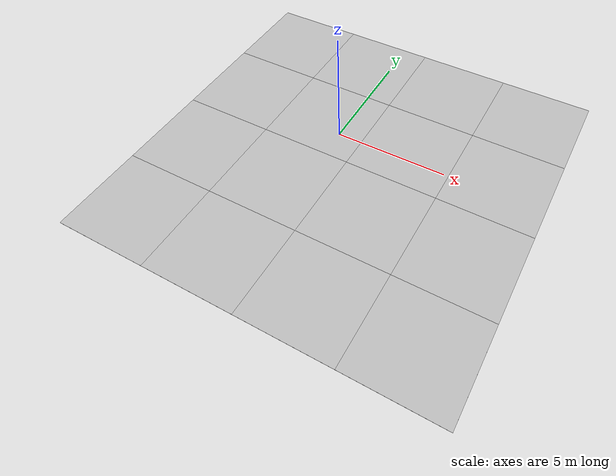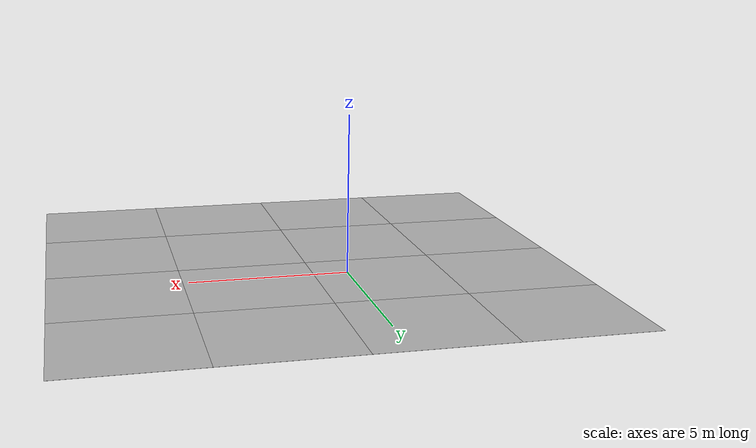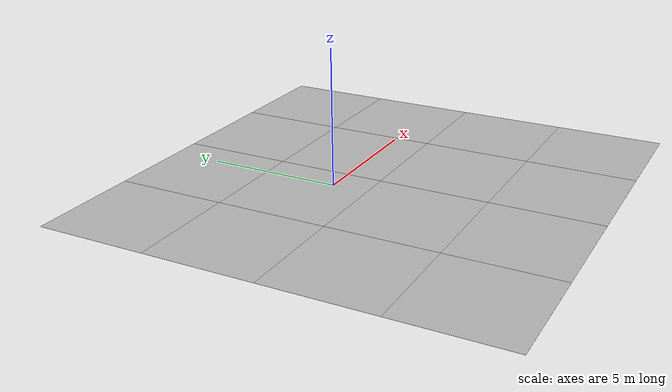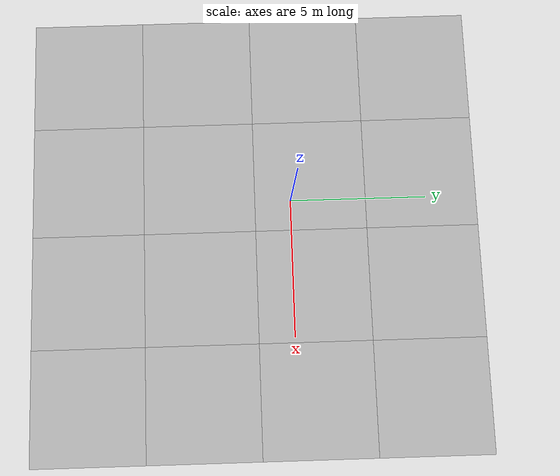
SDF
<sdf version='1.6'><world name='default'>
    <light name='sun_light' type='directional'>
      <pose frame=''>0 0 10 0 -0 0</pose>
      <diffuse>0.5 0.5 0.5 1</diffuse>
      <specular>0.1 0.1 0.1 1</specular>
      <direction>0.1 0.1 -0.9</direction>
      <attenuation>
        <range>20</range>
        <constant>0.5</constant>
        <linear>0.01</linear>
        <quadratic>0.001</quadratic>
      </attenuation>
      <cast_shadows>1</cast_shadows>
    </light>

    <model name='Tile/0-0'>
      <static>1</static>
      <link name='link'>
        <collision name='collision'>
          <geometry>
            <plane>
              <normal>0 0 1</normal>
              <size>4.096 4.096</size>
            </plane>
          </geometry>
          <surface>
            <friction>
              <ode>
                <mu>100</mu>
                <mu2>50</mu2>
              </ode>
              <torsional>
                <ode/>
              </torsional>
            </friction>
            <contact>
              <ode/>
            </contact>
            <bounce/>
          </surface>
          <max_contacts>10</max_contacts>
        </collision>
        <visual name='visual'>
          <cast_shadows>0</cast_shadows>
          <geometry>
            <plane>
              <normal>0 0 1</normal>
              <size>4.096 4.096</size>
            </plane>
          </geometry>
          <material>
            <script>
              <uri>file://materials/scripts</uri>
              <uri>file://materials/textures</uri>
              <name>Tile/5eab350b8220ac9944dbdfa4ac3288c7c17e24c3bf5df0dfcf6173d64dae00a1</name>
            </script>
          </material>
        </visual>
        <self_collide>0</self_collide>
        <enable_wind>0</enable_wind>
        <kinematic>0</kinematic>
      </link>
      <pose frame=''>-5.050071211363732 -7.4591558234549336 0 0 -0 0</pose>
    </model>

    <model name='Tile/0-1'>
      <static>1</static>
      <link name='link'>
        <collision name='collision'>
          <geometry>
            <plane>
              <normal>0 0 1</normal>
              <size>4.096 4.096</size>
            </plane>
          </geometry>
          <surface>
            <friction>
              <ode>
                <mu>100</mu>
                <mu2>50</mu2>
              </ode>
              <torsional>
                <ode/>
              </torsional>
            </friction>
            <contact>
              <ode/>
            </contact>
            <bounce/>
          </surface>
          <max_contacts>10</max_contacts>
        </collision>
        <visual name='visual'>
          <cast_shadows>0</cast_shadows>
          <geometry>
            <plane>
              <normal>0 0 1</normal>
              <size>4.096 4.096</size>
            </plane>
          </geometry>
          <material>
            <script>
              <uri>file://materials/scripts</uri>
              <uri>file://materials/textures</uri>
              <name>Tile/5a66a0bfa3d747c69b55a5d540424d5da67a893702cb40a3cc12525976280c4e</name>
            </script>
          </material>
        </visual>
        <self_collide>0</self_collide>
        <enable_wind>0</enable_wind>
        <kinematic>0</kinematic>
      </link>
      <pose frame=''>-5.050071211363732 -3.3631558234549335 0 0 -0 0</pose>
    </model>

    <model name='Tile/0-2'>
      <static>1</static>
      <link name='link'>
        <collision name='collision'>
          <geometry>
            <plane>
              <normal>0 0 1</normal>
              <size>4.096 4.096</size>
            </plane>
          </geometry>
          <surface>
            <friction>
              <ode>
                <mu>100</mu>
                <mu2>50</mu2>
              </ode>
              <torsional>
                <ode/>
              </torsional>
            </friction>
            <contact>
              <ode/>
            </contact>
            <bounce/>
          </surface>
          <max_contacts>10</max_contacts>
        </collision>
        <visual name='visual'>
          <cast_shadows>0</cast_shadows>
          <geometry>
            <plane>
              <normal>0 0 1</normal>
              <size>4.096 4.096</size>
            </plane>
          </geometry>
          <material>
            <script>
              <uri>file://materials/scripts</uri>
              <uri>file://materials/textures</uri>
              <name>Tile/5eab350b8220ac9944dbdfa4ac3288c7c17e24c3bf5df0dfcf6173d64dae00a1</name>
            </script>
          </material>
        </visual>
        <self_collide>0</self_collide>
        <enable_wind>0</enable_wind>
        <kinematic>0</kinematic>
      </link>
      <pose frame=''>-5.050071211363732 0.7328441765450666 0 0 -0 0</pose>
    </model>

    <model name='Tile/0-3'>
      <static>1</static>
      <link name='link'>
        <collision name='collision'>
          <geometry>
            <plane>
              <normal>0 0 1</normal>
              <size>4.096 4.096</size>
            </plane>
          </geometry>
          <surface>
            <friction>
              <ode>
                <mu>100</mu>
                <mu2>50</mu2>
              </ode>
              <torsional>
                <ode/>
              </torsional>
            </friction>
            <contact>
              <ode/>
            </contact>
            <bounce/>
          </surface>
          <max_contacts>10</max_contacts>
        </collision>
        <visual name='visual'>
          <cast_shadows>0</cast_shadows>
          <geometry>
            <plane>
              <normal>0 0 1</normal>
              <size>4.096 4.096</size>
            </plane>
          </geometry>
          <material>
            <script>
              <uri>file://materials/scripts</uri>
              <uri>file://materials/textures</uri>
              <name>Tile/5eab350b8220ac9944dbdfa4ac3288c7c17e24c3bf5df0dfcf6173d64dae00a1</name>
            </script>
          </material>
        </visual>
        <self_collide>0</self_collide>
        <enable_wind>0</enable_wind>
        <kinematic>0</kinematic>
      </link>
      <pose frame=''>-5.050071211363732 4.828844176545067 0 0 -0 0</pose>
    </model>

    <model name='Tile/1-0'>
      <static>1</static>
      <link name='link'>
        <collision name='collision'>
          <geometry>
            <plane>
              <normal>0 0 1</normal>
              <size>4.096 4.096</size>
            </plane>
          </geometry>
          <surface>
            <friction>
              <ode>
                <mu>100</mu>
                <mu2>50</mu2>
              </ode>
              <torsional>
                <ode/>
              </torsional>
            </friction>
            <contact>
              <ode/>
            </contact>
            <bounce/>
          </surface>
          <max_contacts>10</max_contacts>
        </collision>
        <visual name='visual'>
          <cast_shadows>0</cast_shadows>
          <geometry>
            <plane>
              <normal>0 0 1</normal>
              <size>4.096 4.096</size>
            </plane>
          </geometry>
          <material>
            <script>
              <uri>file://materials/scripts</uri>
              <uri>file://materials/textures</uri>
              <name>Tile/239ede4f53990f64573162637959fd5098ceda2349e6f6bf7c6aa361c2c83058</name>
            </script>
          </material>
        </visual>
        <self_collide>0</self_collide>
        <enable_wind>0</enable_wind>
        <kinematic>0</kinematic>
      </link>
      <pose frame=''>-0.9540712113637317 -7.4591558234549336 0 0 -0 0</pose>
    </model>

    <model name='Tile/1-1'>
      <static>1</static>
      <link name='link'>
        <collision name='collision'>
          <geometry>
            <plane>
              <normal>0 0 1</normal>
              <size>4.096 4.096</size>
            </plane>
          </geometry>
          <surface>
            <friction>
              <ode>
                <mu>100</mu>
                <mu2>50</mu2>
              </ode>
              <torsional>
                <ode/>
              </torsional>
            </friction>
            <contact>
              <ode/>
            </contact>
            <bounce/>
          </surface>
          <max_contacts>10</max_contacts>
        </collision>
        <visual name='visual'>
          <cast_shadows>0</cast_shadows>
          <geometry>
            <plane>
              <normal>0 0 1</normal>
              <size>4.096 4.096</size>
            </plane>
          </geometry>
          <material>
            <script>
              <uri>file://materials/scripts</uri>
              <uri>file://materials/textures</uri>
              <name>Tile/1ec3315085df3bd0d11de8666c0d31b0d1e885dc59b2e86f7b0bdb83cc6b4da9</name>
            </script>
          </material>
        </visual>
        <self_collide>0</self_collide>
        <enable_wind>0</enable_wind>
        <kinematic>0</kinematic>
      </link>
      <pose frame=''>-0.9540712113637317 -3.3631558234549335 0 0 -0 0</pose>
    </model>

    <model name='Tile/1-2'>
      <static>1</static>
      <link name='link'>
        <collision name='collision'>
          <geometry>
            <plane>
              <normal>0 0 1</normal>
              <size>4.096 4.096</size>
            </plane>
          </geometry>
          <surface>
            <friction>
              <ode>
                <mu>100</mu>
                <mu2>50</mu2>
              </ode>
              <torsional>
                <ode/>
              </torsional>
            </friction>
            <contact>
              <ode/>
            </contact>
            <bounce/>
          </surface>
          <max_contacts>10</max_contacts>
        </collision>
        <visual name='visual'>
          <cast_shadows>0</cast_shadows>
          <geometry>
            <plane>
              <normal>0 0 1</normal>
              <size>4.096 4.096</size>
            </plane>
          </geometry>
          <material>
            <script>
              <uri>file://materials/scripts</uri>
              <uri>file://materials/textures</uri>
              <name>Tile/93be3b9bc39211303f4a721c476428c2435ef58e27259f970f4181d55574559f</name>
            </script>
          </material>
        </visual>
        <self_collide>0</self_collide>
        <enable_wind>0</enable_wind>
        <kinematic>0</kinematic>
      </link>
      <pose frame=''>-0.9540712113637317 0.7328441765450666 0 0 -0 0</pose>
    </model>

    <model name='Tile/1-3'>
      <static>1</static>
      <link name='link'>
        <collision name='collision'>
          <geometry>
            <plane>
              <normal>0 0 1</normal>
              <size>4.096 4.096</size>
            </plane>
          </geometry>
          <surface>
            <friction>
              <ode>
                <mu>100</mu>
                <mu2>50</mu2>
              </ode>
              <torsional>
                <ode/>
              </torsional>
            </friction>
            <contact>
              <ode/>
            </contact>
            <bounce/>
          </surface>
          <max_contacts>10</max_contacts>
        </collision>
        <visual name='visual'>
          <cast_shadows>0</cast_shadows>
          <geometry>
            <plane>
              <normal>0 0 1</normal>
              <size>4.096 4.096</size>
            </plane>
          </geometry>
          <material>
            <script>
              <uri>file://materials/scripts</uri>
              <uri>file://materials/textures</uri>
              <name>Tile/5eab350b8220ac9944dbdfa4ac3288c7c17e24c3bf5df0dfcf6173d64dae00a1</name>
            </script>
          </material>
        </visual>
        <self_collide>0</self_collide>
        <enable_wind>0</enable_wind>
        <kinematic>0</kinematic>
      </link>
      <pose frame=''>-0.9540712113637317 4.828844176545067 0 0 -0 0</pose>
    </model>

    <model name='Tile/2-0'>
      <static>1</static>
      <link name='link'>
        <collision name='collision'>
          <geometry>
            <plane>
              <normal>0 0 1</normal>
              <size>4.096 4.096</size>
            </plane>
          </geometry>
          <surface>
            <friction>
              <ode>
                <mu>100</mu>
                <mu2>50</mu2>
              </ode>
              <torsional>
                <ode/>
              </torsional>
            </friction>
            <contact>
              <ode/>
            </contact>
            <bounce/>
          </surface>
          <max_contacts>10</max_contacts>
        </collision>
        <visual name='visual'>
          <cast_shadows>0</cast_shadows>
          <geometry>
            <plane>
              <normal>0 0 1</normal>
              <size>4.096 4.096</size>
            </plane>
          </geometry>
          <material>
            <script>
              <uri>file://materials/scripts</uri>
              <uri>file://materials/textures</uri>
              <name>Tile/5eab350b8220ac9944dbdfa4ac3288c7c17e24c3bf5df0dfcf6173d64dae00a1</name>
            </script>
          </material>
        </visual>
        <self_collide>0</self_collide>
        <enable_wind>0</enable_wind>
        <kinematic>0</kinematic>
      </link>
      <pose frame=''>3.1419287886362683 -7.4591558234549336 0 0 -0 0</pose>
    </model>

    <model name='Tile/2-1'>
      <static>1</static>
      <link name='link'>
        <collision name='collision'>
          <geometry>
            <plane>
              <normal>0 0 1</normal>
              <size>4.096 4.096</size>
            </plane>
          </geometry>
          <surface>
            <friction>
              <ode>
                <mu>100</mu>
                <mu2>50</mu2>
              </ode>
              <torsional>
                <ode/>
              </torsional>
            </friction>
            <contact>
              <ode/>
            </contact>
            <bounce/>
          </surface>
          <max_contacts>10</max_contacts>
        </collision>
        <visual name='visual'>
          <cast_shadows>0</cast_shadows>
          <geometry>
            <plane>
              <normal>0 0 1</normal>
              <size>4.096 4.096</size>
            </plane>
          </geometry>
          <material>
            <script>
              <uri>file://materials/scripts</uri>
              <uri>file://materials/textures</uri>
              <name>Tile/090532f52e43d84379dc4e373399103c6d137b4e0d78895c8363fdddc858d9fa</name>
            </script>
          </material>
        </visual>
        <self_collide>0</self_collide>
        <enable_wind>0</enable_wind>
        <kinematic>0</kinematic>
      </link>
      <pose frame=''>3.1419287886362683 -3.3631558234549335 0 0 -0 0</pose>
    </model>

    <model name='Tile/2-2'>
      <static>1</static>
      <link name='link'>
        <collision name='collision'>
          <geometry>
            <plane>
              <normal>0 0 1</normal>
              <size>4.096 4.096</size>
            </plane>
          </geometry>
          <surface>
            <friction>
              <ode>
                <mu>100</mu>
                <mu2>50</mu2>
              </ode>
              <torsional>
                <ode/>
              </torsional>
            </friction>
            <contact>
              <ode/>
            </contact>
            <bounce/>
          </surface>
          <max_contacts>10</max_contacts>
        </collision>
        <visual name='visual'>
          <cast_shadows>0</cast_shadows>
          <geometry>
            <plane>
              <normal>0 0 1</normal>
              <size>4.096 4.096</size>
            </plane>
          </geometry>
          <material>
            <script>
              <uri>file://materials/scripts</uri>
              <uri>file://materials/textures</uri>
              <name>Tile/e4da6bf26a10114d0ce79e3be90ea244ea1764dfc02c743f575a2e3ec1716f54</name>
            </script>
          </material>
        </visual>
        <self_collide>0</self_collide>
        <enable_wind>0</enable_wind>
        <kinematic>0</kinematic>
      </link>
      <pose frame=''>3.1419287886362683 0.7328441765450666 0 0 -0 0</pose>
    </model>

    <model name='Tile/2-3'>
      <static>1</static>
      <link name='link'>
        <collision name='collision'>
          <geometry>
            <plane>
              <normal>0 0 1</normal>
              <size>4.096 4.096</size>
            </plane>
          </geometry>
          <surface>
            <friction>
              <ode>
                <mu>100</mu>
                <mu2>50</mu2>
              </ode>
              <torsional>
                <ode/>
              </torsional>
            </friction>
            <contact>
              <ode/>
            </contact>
            <bounce/>
          </surface>
          <max_contacts>10</max_contacts>
        </collision>
        <visual name='visual'>
          <cast_shadows>0</cast_shadows>
          <geometry>
            <plane>
              <normal>0 0 1</normal>
              <size>4.096 4.096</size>
            </plane>
          </geometry>
          <material>
            <script>
              <uri>file://materials/scripts</uri>
              <uri>file://materials/textures</uri>
              <name>Tile/5eab350b8220ac9944dbdfa4ac3288c7c17e24c3bf5df0dfcf6173d64dae00a1</name>
            </script>
          </material>
        </visual>
        <self_collide>0</self_collide>
        <enable_wind>0</enable_wind>
        <kinematic>0</kinematic>
      </link>
      <pose frame=''>3.1419287886362683 4.828844176545067 0 0 -0 0</pose>
    </model>

    <model name='Tile/3-0'>
      <static>1</static>
      <link name='link'>
        <collision name='collision'>
          <geometry>
            <plane>
              <normal>0 0 1</normal>
              <size>4.096 4.096</size>
            </plane>
          </geometry>
          <surface>
            <friction>
              <ode>
                <mu>100</mu>
                <mu2>50</mu2>
              </ode>
              <torsional>
                <ode/>
              </torsional>
            </friction>
            <contact>
              <ode/>
            </contact>
            <bounce/>
          </surface>
          <max_contacts>10</max_contacts>
        </collision>
        <visual name='visual'>
          <cast_shadows>0</cast_shadows>
          <geometry>
            <plane>
              <normal>0 0 1</normal>
              <size>4.096 4.096</size>
            </plane>
          </geometry>
          <material>
            <script>
              <uri>file://materials/scripts</uri>
              <uri>file://materials/textures</uri>
              <name>Tile/5eab350b8220ac9944dbdfa4ac3288c7c17e24c3bf5df0dfcf6173d64dae00a1</name>
            </script>
          </material>
        </visual>
        <self_collide>0</self_collide>
        <enable_wind>0</enable_wind>
        <kinematic>0</kinematic>
      </link>
      <pose frame=''>7.237928788636268 -7.4591558234549336 0 0 -0 0</pose>
    </model>

    <model name='Tile/3-1'>
      <static>1</static>
      <link name='link'>
        <collision name='collision'>
          <geometry>
            <plane>
              <normal>0 0 1</normal>
              <size>4.096 4.096</size>
            </plane>
          </geometry>
          <surface>
            <friction>
              <ode>
                <mu>100</mu>
                <mu2>50</mu2>
              </ode>
              <torsional>
                <ode/>
              </torsional>
            </friction>
            <contact>
              <ode/>
            </contact>
            <bounce/>
          </surface>
          <max_contacts>10</max_contacts>
        </collision>
        <visual name='visual'>
          <cast_shadows>0</cast_shadows>
          <geometry>
            <plane>
              <normal>0 0 1</normal>
              <size>4.096 4.096</size>
            </plane>
          </geometry>
          <material>
            <script>
              <uri>file://materials/scripts</uri>
              <uri>file://materials/textures</uri>
              <name>Tile/5eab350b8220ac9944dbdfa4ac3288c7c17e24c3bf5df0dfcf6173d64dae00a1</name>
            </script>
          </material>
        </visual>
        <self_collide>0</self_collide>
        <enable_wind>0</enable_wind>
        <kinematic>0</kinematic>
      </link>
      <pose frame=''>7.237928788636268 -3.3631558234549335 0 0 -0 0</pose>
    </model>

    <model name='Tile/3-2'>
      <static>1</static>
      <link name='link'>
        <collision name='collision'>
          <geometry>
            <plane>
              <normal>0 0 1</normal>
              <size>4.096 4.096</size>
            </plane>
          </geometry>
          <surface>
            <friction>
              <ode>
                <mu>100</mu>
                <mu2>50</mu2>
              </ode>
              <torsional>
                <ode/>
              </torsional>
            </friction>
            <contact>
              <ode/>
            </contact>
            <bounce/>
          </surface>
          <max_contacts>10</max_contacts>
        </collision>
        <visual name='visual'>
          <cast_shadows>0</cast_shadows>
          <geometry>
            <plane>
              <normal>0 0 1</normal>
              <size>4.096 4.096</size>
            </plane>
          </geometry>
          <material>
            <script>
              <uri>file://materials/scripts</uri>
              <uri>file://materials/textures</uri>
              <name>Tile/5eab350b8220ac9944dbdfa4ac3288c7c17e24c3bf5df0dfcf6173d64dae00a1</name>
            </script>
          </material>
        </visual>
        <self_collide>0</self_collide>
        <enable_wind>0</enable_wind>
        <kinematic>0</kinematic>
      </link>
      <pose frame=''>7.237928788636268 0.7328441765450666 0 0 -0 0</pose>
    </model>

    <model name='Tile/3-3'>
      <static>1</static>
      <link name='link'>
        <collision name='collision'>
          <geometry>
            <plane>
              <normal>0 0 1</normal>
              <size>4.096 4.096</size>
            </plane>
          </geometry>
          <surface>
            <friction>
              <ode>
                <mu>100</mu>
                <mu2>50</mu2>
              </ode>
              <torsional>
                <ode/>
              </torsional>
            </friction>
            <contact>
              <ode/>
            </contact>
            <bounce/>
          </surface>
          <max_contacts>10</max_contacts>
        </collision>
        <visual name='visual'>
          <cast_shadows>0</cast_shadows>
          <geometry>
            <plane>
              <normal>0 0 1</normal>
              <size>4.096 4.096</size>
            </plane>
          </geometry>
          <material>
            <script>
              <uri>file://materials/scripts</uri>
              <uri>file://materials/textures</uri>
              <name>Tile/5eab350b8220ac9944dbdfa4ac3288c7c17e24c3bf5df0dfcf6173d64dae00a1</name>
            </script>
          </material>
        </visual>
        <self_collide>0</self_collide>
        <enable_wind>0</enable_wind>
        <kinematic>0</kinematic>
      </link>
      <pose frame=''>7.237928788636268 4.828844176545067 0 0 -0 0</pose>
    </model>
    </world></sdf>
